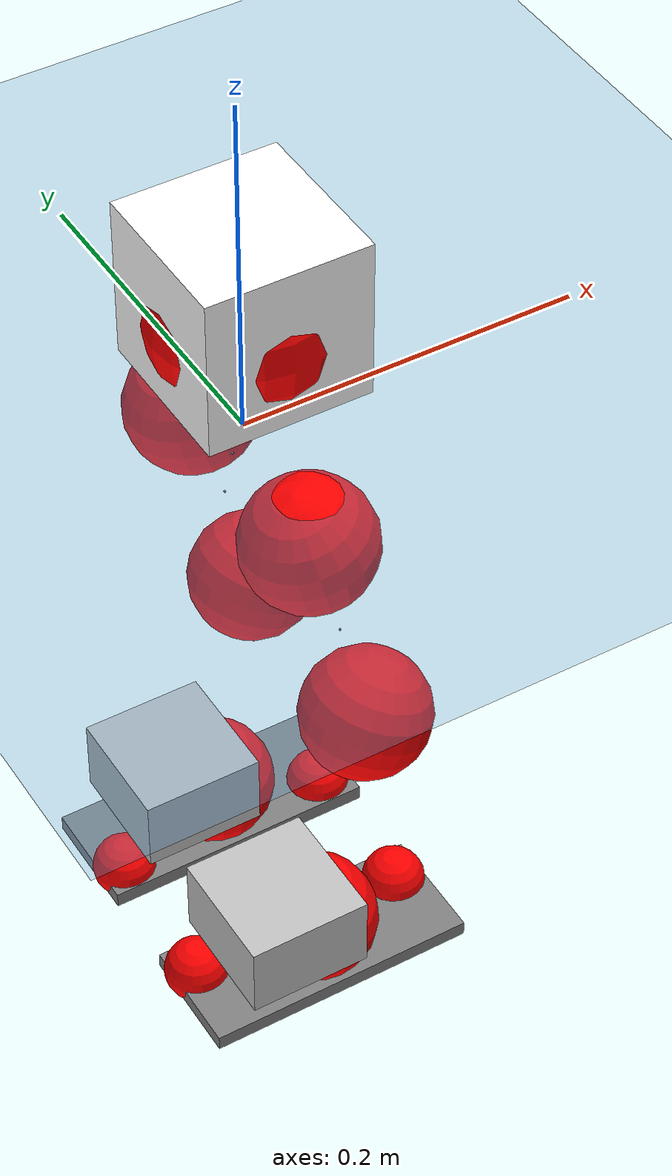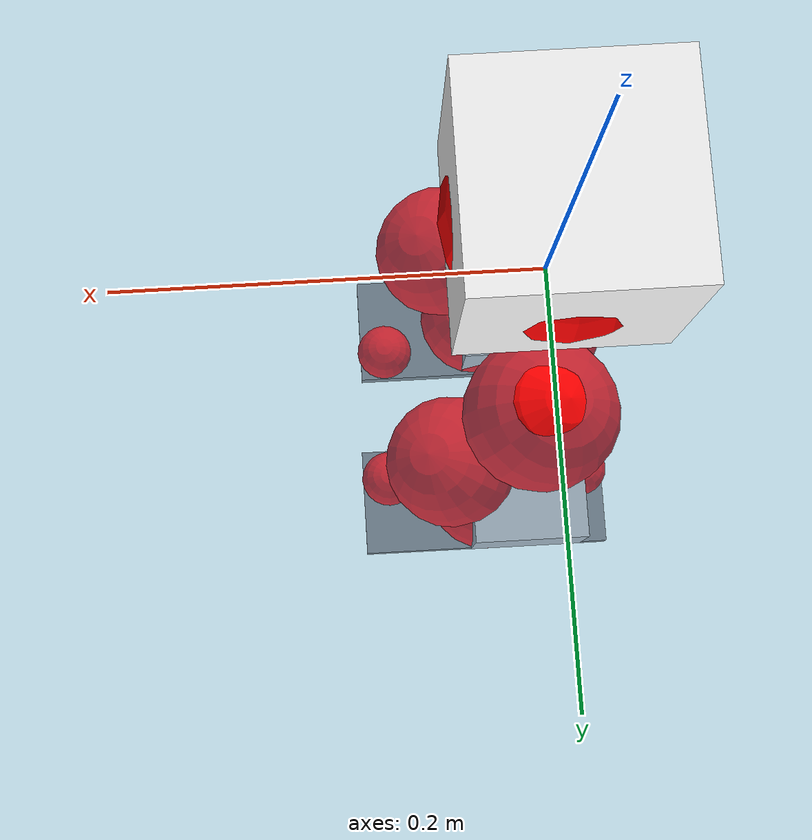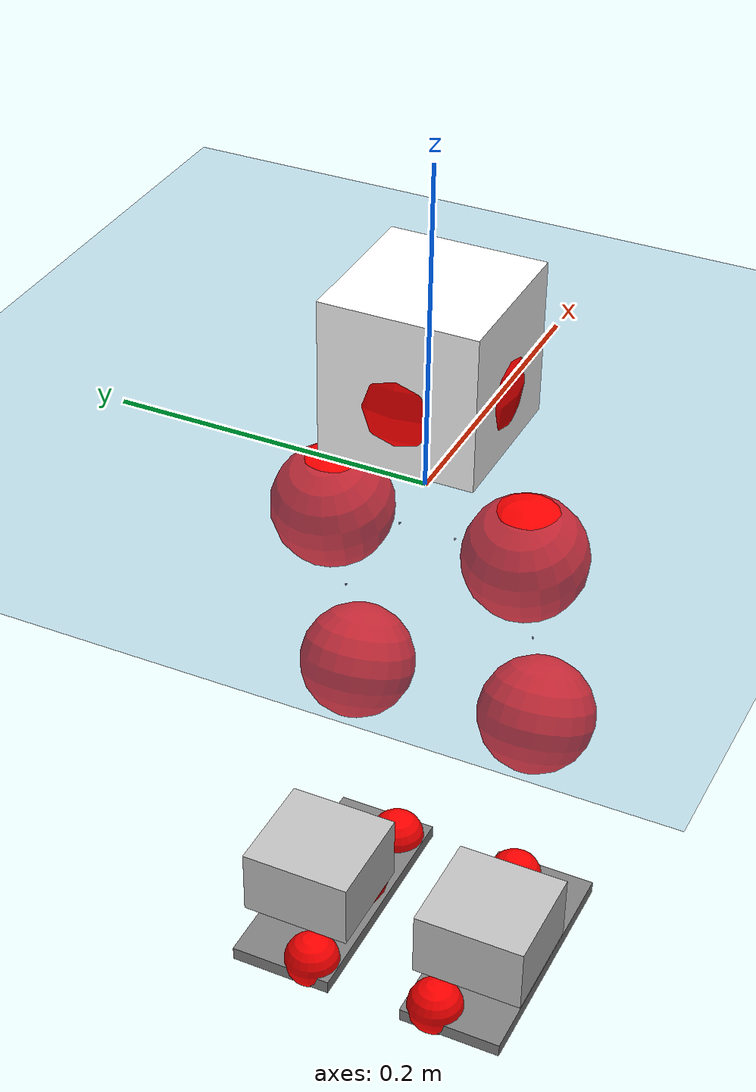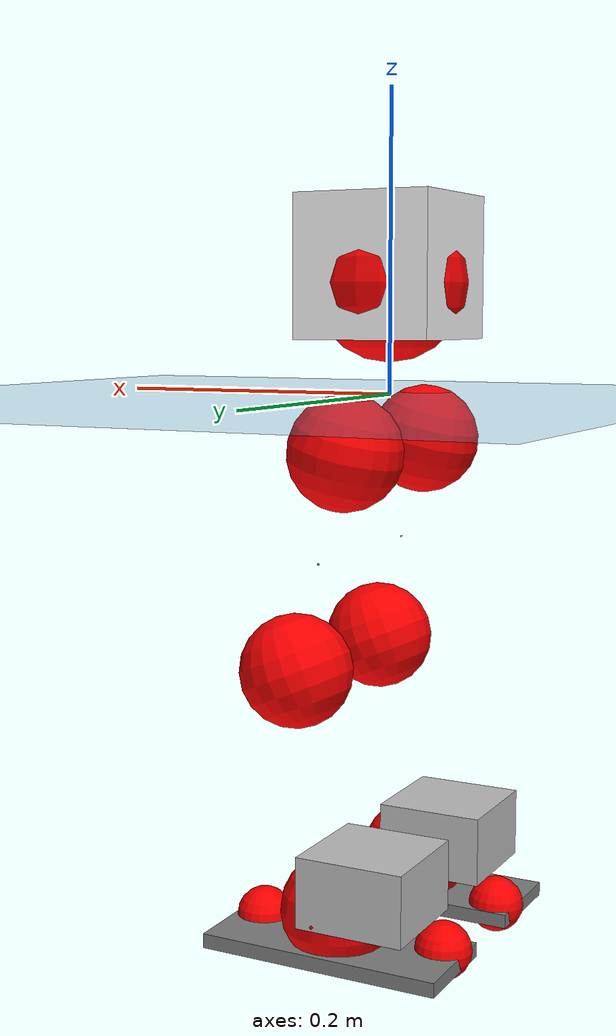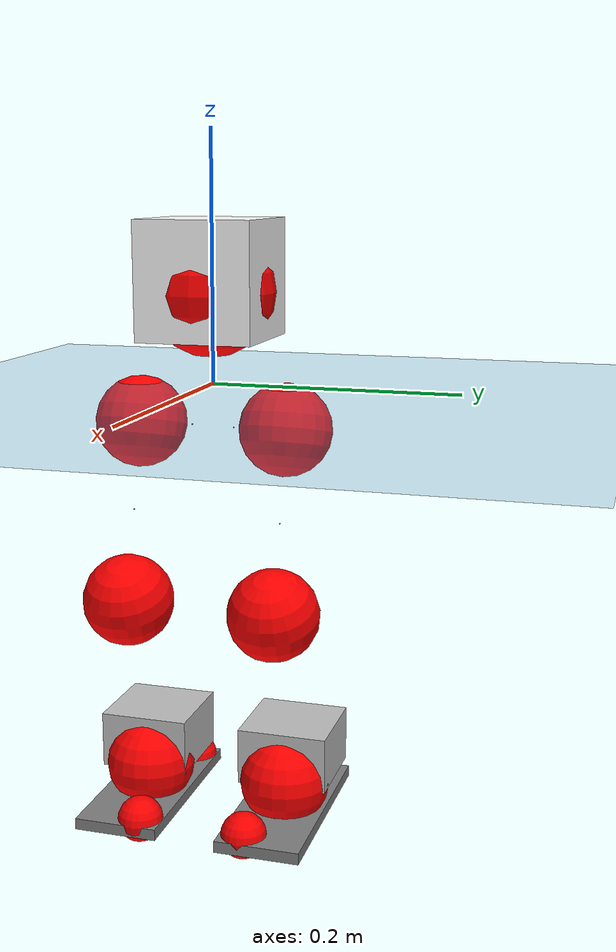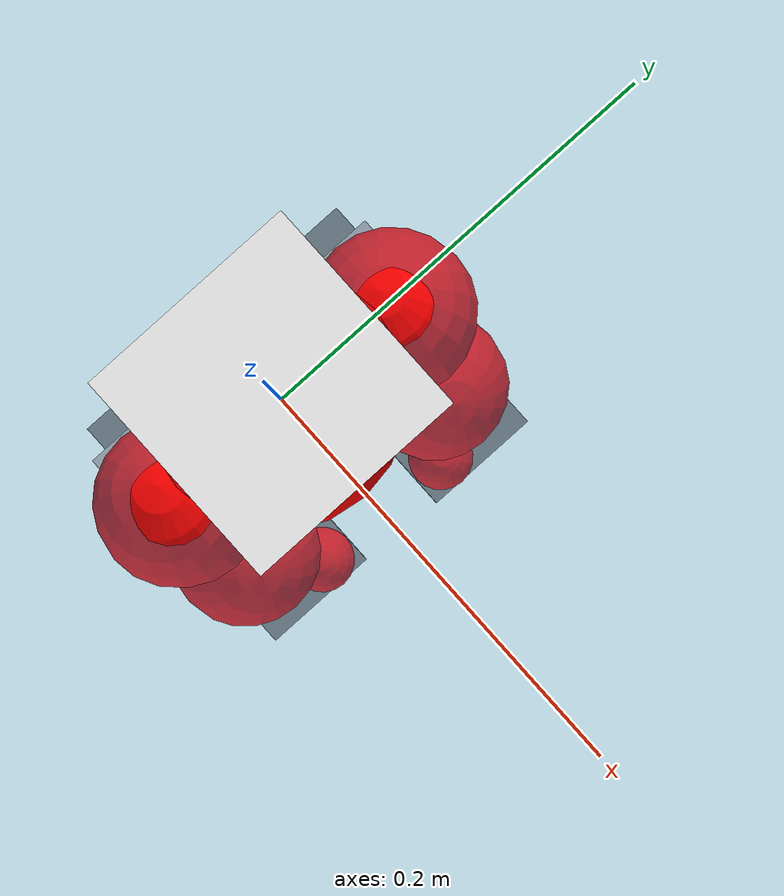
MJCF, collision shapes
<mujoco model="pi_12dof_release_v1">
  <compiler angle="radian" assetdir="assets" balanceinertia="true" inertiafromgeom="false"/>

  <option timestep="0.005" density="1.2" viscosity="2e-05"/>

  <size nkey="1"/>

  <visual>
    <quality shadowsize="8192"/>
    <map shadowclip="0.5"/>
  </visual>

  <default>
    <default class="/">
      <joint armature="0.01" damping="0.01" frictionloss="0.01"/>
      <geom contype="0" conaffinity="0" group="1" solref="-1000 -80"/>
      <site size="0.01 0.005 0.005" group="5"/>
      <general forcelimited="true" biastype="affine" gainprm="20" biasprm="0 -20 -0.5"/>
      <default class="foot">
        <geom size="0.0845 0.036 0.005" type="box" condim="6" group="4" priority="1" friction="0.9 0.2 0.2" solimp="0.015 1 0.005"/>
      </default>
      <default class="reward_collision_sphere">
        <geom group="5" rgba="1 0 0 1"/>
      </default>
    </default>
  </default>

  <asset>
    <texture type="skybox" colorspace="auto" name="//unnamed_texture_0" builtin="gradient" rgb1="0.95 0.95 0.95" rgb2="0.95 0.95 0.95" width="100" height="600"/>
    <texture type="2d" colorspace="auto" name="texplane" builtin="checker" rgb1="0.345 0.575 0.748" rgb2="0.345 0.575 0.748" markrgb="1 1 1" width="512" height="512"/>
    <material name="MatPlane" class="/" texture="texplane" texuniform="true" texrepeat="2 2" specular="0.9"/>
    <mesh name="baselink_1" class="/" file="baselink_1.STL"/>
    <mesh name="r_hip_pitch_link" class="/" file="r_hip_pitch_link.STL"/>
    <mesh name="r_hip_roll_link" class="/" file="r_hip_roll_link.STL"/>
    <mesh name="r_thigh_link" class="/" file="r_thigh_link.STL"/>
    <mesh name="r_calf_link" class="/" file="r_calf_link.STL"/>
    <mesh name="r_ankle_pitch_link" class="/" file="r_ankle_pitch_link.STL"/>
    <mesh name="r_ankle_roll_link" class="/" file="r_ankle_roll_link.STL"/>
    <mesh name="l_hip_pitch_link" class="/" file="l_hip_pitch_link.STL"/>
    <mesh name="l_hip_roll_link" class="/" file="l_hip_roll_link.STL"/>
    <mesh name="l_thigh_link" class="/" file="l_thigh_link.STL"/>
    <mesh name="l_calf_link" class="/" file="l_calf_link.STL"/>
    <mesh name="l_ankle_pitch_link" class="/" file="l_ankle_pitch_link.STL"/>
    <mesh name="l_ankle_roll_link" class="/" file="l_ankle_roll_link.STL"/>
  </asset>

  <worldbody>
    <geom name="floor" class="/" size="100 100 0.125" type="plane" group="0" material="MatPlane"/>
    <light name="toplight_shadow" class="/" pos="0 0 5" dir="0.0990148 0.0990148 -0.990148" type="directional" ambient="0.04 0.04 0.04" diffuse="0.55 0.55 0.55" specular="0.12 0.12 0.12"/>
    <light name="toplight_fill" class="/" pos="0 0 5" dir="0.0990148 0.0990148 -0.990148" type="directional" castshadow="false" ambient="0.04 0.04 0.04" diffuse="0.3 0.3 0.3" specular="0.08 0.08 0.08"/>
    <body name="trunk" pos="0.00115682 -0.000930032 -0.000145001" quat="1 -9.68202e-06 3.73463e-05 -2.5566e-06">
      <inertial pos="0.002058 -0.000195866 0.0423099" quat="0.697499 0.00651473 0.00890862 0.7165" mass="1.76954" diaginertia="0.00885953 0.00285234 0.00528712"/>
      <joint name="//unnamed_joint_0" type="free"/>
      <geom name="//unnamed_geom_1" class="/" type="mesh" density="0" rgba="1 1 1 1" mesh="baselink_1"/>
      <geom name="//unnamed_geom_2" class="/" size="0.0469663 0.0469663 0.0469663" pos="0 0 0.0838423" type="box" rgba="1 1 1 1"/>
      <geom name="//unnamed_geom_3" class="reward_collision_sphere" size="0.0516629" pos="0 0 0.073362"/>
      <site name="imu" class="/" pos="-0.00165138 -0.00268497 -0.00865109" size="0.00939325"/>
      <camera name="track" class="/" pos="0 -1.58815 0" quat="0.707107 0.707107 0 0" mode="trackcom"/>
      <camera name="ego_camera" class="/" pos="0.0731905 0 0.188645" quat="-0.5 -0.5 0.5 0.5"/>
      <body name="r_hip_pitch_link" pos="0.000572335 -0.0176263 -0.0337114" quat="0.99213 -2.71423e-05 -0.125213 0.000281347">
        <inertial pos="-0.000396795 -0.0436394 7.51483e-05" quat="-0.0200393 0.705771 -0.0286854 0.707575" mass="0.307293" diaginertia="9.61926e-05 3.10843e-05 0.000104723"/>
        <joint name="r_hip_pitch_joint" class="/" pos="0 0 0" axis="-0.00116626 -0.999953 0.00965163" range="-1.7174 1.24248" armature="0.00941826" damping="0.0207629" frictionloss="0.00939819"/>
        <geom name="//unnamed_geom_4" class="/" type="mesh" density="0" rgba="0.75294 0.75294 0.75294 1" mesh="r_hip_pitch_link"/>
        <geom name="//unnamed_geom_5" class="/" size="0.000469663 0.000469663 0.000469663" type="box" rgba="0.75294 0.75294 0.75294 1"/>
        <body name="r_hip_roll_link" pos="0.000465499 -0.0439363 0.000682251" quat="1 0.0001122 -0.000352813 -0.000263881">
          <inertial pos="-0.00131892 -0.00034487 -0.0664671" quat="0.703164 -0.0825132 -0.0829974 0.701329" mass="0.324399" diaginertia="0.000297337 8.86021e-05 0.000164597"/>
          <joint name="r_hip_roll_joint" class="/" pos="0 0 0" axis="-0.999995 0.00192881 -0.00236864" range="-0.109318 0.515706" armature="0.00903665" damping="0.0101685" frictionloss="0.00939648"/>
          <geom name="//unnamed_geom_6" class="/" type="mesh" density="0" rgba="0.75294 0.75294 0.75294 1" mesh="r_hip_roll_link"/>
          <geom name="//unnamed_geom_7" class="/" size="0.000469663 0.000469663 0.000469663" type="box" rgba="0.75294 0.75294 0.75294 1"/>
          <geom name="//unnamed_geom_8" class="reward_collision_sphere" size="0.037573"/>
          <body name="r_thigh_link" pos="-0.000268497 -0.00116096 -0.0728779" quat="1 -2.26853e-05 -2.55368e-05 2.56048e-05">
            <inertial pos="-0.000605223 0.00144409 -0.0496679" quat="0.738299 0.674433 -0.00474151 0.00566249" mass="0.091931" diaginertia="0.000109422 2.97267e-05 7.19421e-05"/>
            <joint name="r_thigh_joint" class="/" pos="0 0 0" axis="0.000647242 -0.000431316 -1" range="-0.302466 0.626519" armature="0.00949727" damping="0.00502362" frictionloss="0.00986217"/>
            <geom name="//unnamed_geom_9" class="/" type="mesh" density="0" rgba="0.75294 0.75294 0.75294 1" mesh="r_thigh_link"/>
            <geom name="//unnamed_geom_10" class="/" size="0.000469663 0.000469663 0.000469663" type="box" rgba="0.75294 0.75294 0.75294 1"/>
            <body name="r_calf_link" pos="-0.00193477 0.000239691 -0.0743602" quat="0.947677 -7.5586e-05 0.319231 0.000102277">
              <inertial pos="0.00129859 -0.00144719 -0.0747716" quat="0.999966 -0.00503714 -0.00146133 0.00637245" mass="0.692736" diaginertia="0.00318125 0.00113277 0.000225431"/>
              <joint name="r_calf_joint" class="/" pos="0 0 0" axis="0.000964695 -0.999956 0.00929346" range="-1.65791 0.649246" armature="0.00897947" damping="0.0083859" frictionloss="0.00917248"/>
              <geom name="//unnamed_geom_11" class="/" type="mesh" density="0" rgba="0.75294 0.75294 0.75294 1" mesh="r_calf_link"/>
              <geom name="//unnamed_geom_12" class="/" size="0.000469663 0.000469663 0.000469663" type="box" rgba="0.75294 0.75294 0.75294 1"/>
              <geom name="//unnamed_geom_13" class="reward_collision_sphere" size="0.037573"/>
              <body name="r_ankle_pitch_link" pos="0.000891296 0.00149389 -0.147193" quat="0.980068 -3.0257e-05 -0.198664 -2.64324e-06">
                <inertial pos="0.00562986 0.0050343 -0.000311678" quat="0.0025154 0.707308 -0.00157785 0.706899" mass="0.1446" diaginertia="0.000270151 6.98292e-05 0.0001503"/>
                <joint name="r_ankle_pitch_joint" class="/" pos="0 0 0" axis="-0.00072039 -1 4.89448e-05" range="-1.31831 0.502809" armature="0.00905033" damping="0.00435278" frictionloss="0.00942525"/>
                <geom name="//unnamed_geom_14" class="/" type="mesh" density="0" rgba="0.75294 0.75294 0.75294 1" mesh="r_ankle_pitch_link"/>
                <geom name="//unnamed_geom_15" class="/" size="0.0366337 0.037573 0.0234831" type="box" rgba="0.75294 0.75294 0.75294 1"/>
                <body name="r_ankle_roll_link" pos="0.0737886 0.00189849 0.00109567" quat="1 -0.000343535 -0.000462687 -0.000788184">
                  <inertial pos="-0.021273 0.000630966 -0.0146023" quat="0.561234 0.43106 0.433668 0.557795" mass="0.423104" diaginertia="0.000983548 0.000327177 0.000364099"/>
                  <joint name="r_ankle_roll_joint" class="/" pos="0 0 0" axis="-0.999965 0.0078418 -0.00301023" range="-0.146865 0.140539" armature="0.00930133" damping="0.0146454" frictionloss="0.00916003"/>
                  <geom name="//unnamed_geom_16" class="/" type="mesh" density="0" rgba="0.75294 0.75294 0.75294 1" mesh="r_ankle_roll_link"/>
                  <geom name="//unnamed_geom_17" class="/" type="mesh" rgba="0.75294 0.75294 0.75294 1" mesh="r_ankle_roll_link"/>
                  <geom name="right_foot" class="foot" size="0.0813183 0.034861 0.00468049" pos="-0.0497696 0 -0.0461133"/>
                  <geom name="//unnamed_geom_19" class="reward_collision_sphere" size="0.037573" pos="-0.0487937 0 -0.0209606"/>
                  <geom name="//unnamed_geom_20" class="reward_collision_sphere" size="0.0187865" pos="0.0146381 0.0158815 -0.0419211"/>
                  <geom name="//unnamed_geom_21" class="reward_collision_sphere" size="0.0187865" pos="-0.117105 0.0158815 -0.0419211"/>
                  <site name="right_foot" class="foot" pos="-0.0497696 0 -0.0461133" size="0.00939325"/>
                </body>
              </body>
            </body>
          </body>
        </body>
      </body>
      <body name="l_hip_pitch_link" pos="0.00191515 0.0183053 -0.0343203" quat="0.992187 6.74364e-05 -0.124757 -0.000113477">
        <inertial pos="0.00241003 0.0406095 -0.000303387" quat="-0.0398372 0.702237 0.0299552 0.710196" mass="0.326014" diaginertia="0.000113661 3.30276e-05 0.000125602"/>
        <joint name="l_hip_pitch_joint" class="/" pos="0 0 0" axis="-0.00417191 0.999954 -0.00865077" range="-1.27523 1.76281" armature="0.00858373" damping="0.0124133" frictionloss="0.00893545"/>
        <geom name="//unnamed_geom_22" class="/" type="mesh" density="0" rgba="0.75294 0.75294 0.75294 1" mesh="l_hip_pitch_link"/>
        <geom name="//unnamed_geom_23" class="/" size="0.000469663 0.000469663 0.000469663" type="box" rgba="0.75294 0.75294 0.75294 1"/>
        <body name="l_hip_roll_link" pos="-0.000173291 0.0436758 0.000579894" quat="1 8.42776e-05 -0.000493386 -0.000241476">
          <inertial pos="-0.00212413 0.00173972 -0.0641942" quat="0.700293 -0.0751673 -0.0775364 0.70564" mass="0.322548" diaginertia="0.000295876 8.76218e-05 0.000158403"/>
          <joint name="l_hip_roll_joint" class="/" pos="0 0 0" axis="-0.999981 -0.00557356 0.00246013" range="-0.511362 0.0969153" armature="0.00970865" damping="0.00462503" frictionloss="0.00974791"/>
          <geom name="//unnamed_geom_24" class="/" type="mesh" density="0" rgba="0.75294 0.75294 0.75294 1" mesh="l_hip_roll_link"/>
          <geom name="//unnamed_geom_25" class="/" size="0.000469663 0.000469663 0.000469663" type="box" rgba="0.75294 0.75294 0.75294 1"/>
          <geom name="//unnamed_geom_26" class="reward_collision_sphere" size="0.037573"/>
          <body name="l_thigh_link" pos="0.000375397 0.000512447 -0.0746527" quat="1 -0.000898685 0.000198231 8.81268e-05">
            <inertial pos="0.000868836 -0.00165806 -0.0478408" quat="0.675072 0.737739 -0.00410407 -0.00114083" mass="0.0920851" diaginertia="0.000111325 3.03345e-05 7.31028e-05"/>
            <joint name="l_thigh_joint" class="/" pos="0 0 0" axis="-0.000207764 0.00306097 -0.999995" range="-0.633478 0.286319" armature="0.0094919" damping="0" frictionloss="0.00957646"/>
            <geom name="//unnamed_geom_27" class="/" type="mesh" density="0" rgba="0.75294 0.75294 0.75294 1" mesh="l_thigh_link"/>
            <geom name="//unnamed_geom_28" class="/" size="0.000469663 0.000469663 0.000469663" type="box" rgba="0.75294 0.75294 0.75294 1"/>
            <body name="l_calf_link" pos="-0.00209947 -0.000392185 -0.0730518" quat="0.94773 7.07698e-05 0.319074 -0.000324609">
              <inertial pos="0.000129581 0.00141041 -0.0734942" quat="0.999991 0.00206231 -0.0017118 -0.00340564" mass="0.671641" diaginertia="0.00307281 0.00109423 0.000218158"/>
              <joint name="l_calf_joint" class="/" pos="0 0 0" axis="0.00671113 0.999971 0.00355551" stiffness="0.000743696" range="-0.653149 1.63446" armature="0.00952284" damping="0.00931934" frictionloss="0.0090489"/>
              <geom name="//unnamed_geom_29" class="/" type="mesh" density="0" rgba="0.75294 0.75294 0.75294 1" mesh="l_calf_link"/>
              <geom name="//unnamed_geom_30" class="/" size="0.000469663 0.000469663 0.000469663" type="box" rgba="0.75294 0.75294 0.75294 1"/>
              <geom name="//unnamed_geom_31" class="reward_collision_sphere" size="0.037573"/>
              <body name="l_ankle_pitch_link" pos="0.000579941 0.000396537 -0.145568" quat="0.980045 0.000367898 -0.198773 4.97147e-05">
                <inertial pos="0.00412329 -0.000974744 -0.000276695" quat="-0.012311 0.707174 0.0021307 0.706929" mass="0.145897" diaginertia="0.00027296 7.05813e-05 0.000155271"/>
                <joint name="l_ankle_pitch_joint" class="/" pos="0 0 0" axis="0.00482886 0.999988 0.00114994" range="-0.513852 1.29503" armature="0.00959348" damping="0" frictionloss="0.00953847"/>
                <geom name="//unnamed_geom_32" class="/" type="mesh" density="0" rgba="0.75294 0.75294 0.75294 1" mesh="l_ankle_pitch_link"/>
                <geom name="//unnamed_geom_33" class="/" size="0.0366337 0.037573 0.0234831" type="box" rgba="0.75294 0.75294 0.75294 1"/>
                <body name="l_ankle_roll_link" pos="0.0742038 0.000246194 0.000133287" quat="1 6.35757e-05 -6.89799e-05 8.31105e-05">
                  <inertial pos="-0.0254065 -0.00241079 -0.0136354" quat="0.559903 0.430685 0.434133 0.55906" mass="0.431904" diaginertia="0.0010005 0.000327713 0.000355945"/>
                  <joint name="l_ankle_roll_joint" class="/" pos="0 0 0" axis="-0.999998 0.00157808 -0.00124584" stiffness="0.000237554" range="-0.151531 0.163125" armature="0.00964833" damping="0.0147651" frictionloss="0.00988953"/>
                  <geom name="//unnamed_geom_34" class="/" type="mesh" density="0" rgba="0.75294 0.75294 0.75294 1" mesh="l_ankle_roll_link"/>
                  <geom name="//unnamed_geom_35" class="/" type="mesh" rgba="0.75294 0.75294 0.75294 1" mesh="l_ankle_roll_link"/>
                  <geom name="left_foot" class="foot" size="0.0824826 0.0350793 0.00479851" pos="-0.0497696 0 -0.0461133"/>
                  <geom name="//unnamed_geom_37" class="reward_collision_sphere" size="0.037573" pos="-0.0487937 0 -0.0209606"/>
                  <geom name="//unnamed_geom_38" class="reward_collision_sphere" size="0.0187865" pos="0.0146381 -0.0158815 -0.0419211"/>
                  <geom name="//unnamed_geom_39" class="reward_collision_sphere" size="0.0187865" pos="-0.117105 -0.0158815 -0.0419211"/>
                  <site name="left_foot" class="foot" pos="-0.0497696 0 -0.0461133" size="0.00939325"/>
                </body>
              </body>
            </body>
          </body>
        </body>
      </body>
    </body>
  </worldbody>

  <contact>
    <pair class="/" geom1="floor" geom2="right_foot" name="//unnamed_contact_1"/>
    <pair class="/" geom1="floor" geom2="left_foot" name="//unnamed_contact_0"/>
  </contact>

  <actuator>
    <general name="r_hip_pitch_joint" class="/" joint="r_hip_pitch_joint" forcerange="-18.9911 18.9911" gainprm="19.0503" biasprm="0 -19.0503 -0.463616"/>
    <general name="r_hip_roll_joint" class="/" joint="r_hip_roll_joint" forcerange="-20.7365 20.7365" gainprm="19.0503" biasprm="0 -19.0503 -0.463616"/>
    <general name="r_thigh_joint" class="/" joint="r_thigh_joint" forcerange="-20.422 20.422" gainprm="19.0503" biasprm="0 -19.0503 -0.463616"/>
    <general name="r_calf_joint" class="/" joint="r_calf_joint" forcerange="-21.0266 21.0266" gainprm="19.0503" biasprm="0 -19.0503 -0.463616"/>
    <general name="r_ankle_pitch_joint" class="/" joint="r_ankle_pitch_joint" forcerange="-19.9152 19.9152" gainprm="19.0503" biasprm="0 -19.0503 -0.463616"/>
    <general name="r_ankle_roll_joint" class="/" joint="r_ankle_roll_joint" forcerange="-19.3526 19.3526" gainprm="19.0503" biasprm="0 -19.0503 -0.463616"/>
    <general name="l_hip_pitch_joint" class="/" joint="l_hip_pitch_joint" forcerange="-19.7048 19.7048" gainprm="19.0503" biasprm="0 -19.0503 -0.463616"/>
    <general name="l_hip_roll_joint" class="/" joint="l_hip_roll_joint" forcerange="-19.2 19.2" gainprm="19.0503" biasprm="0 -19.0503 -0.463616"/>
    <general name="l_thigh_joint" class="/" joint="l_thigh_joint" forcerange="-18.9811 18.9811" gainprm="19.0503" biasprm="0 -19.0503 -0.463616"/>
    <general name="l_calf_joint" class="/" joint="l_calf_joint" forcerange="-19.804 19.804" gainprm="19.0503" biasprm="0 -19.0503 -0.463616"/>
    <general name="l_ankle_pitch_joint" class="/" joint="l_ankle_pitch_joint" forcerange="-20.0852 20.0852" gainprm="19.0503" biasprm="0 -19.0503 -0.463616"/>
    <general name="l_ankle_roll_joint" class="/" joint="l_ankle_roll_joint" forcerange="-19.1972 19.1972" gainprm="19.0503" biasprm="0 -19.0503 -0.463616"/>
  </actuator>

  <sensor>
    <gyro site="imu" name="imu_angular_velocity"/>
    <velocimeter site="imu" name="imu_linear_velocity"/>
    <framelinvel objtype="site" objname="left_foot" name="left_foot_global_linear_velocity"/>
    <framelinvel objtype="site" objname="right_foot" name="right_foot_global_linear_velocity"/>
  </sensor>

  <keyframe>
    <key name="home" qpos="0 0 0.291 1 0 0 0 0.4 0 0 -0.8 0.4 0 -0.4 0 0 0.8 -0.4 0"/>
  </keyframe>
</mujoco>
